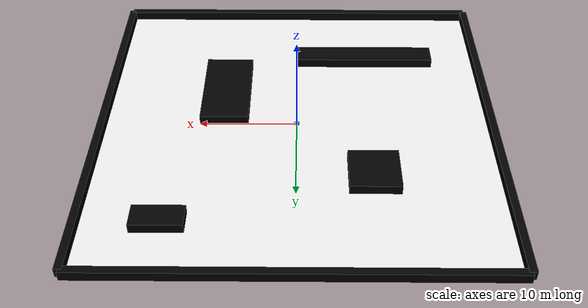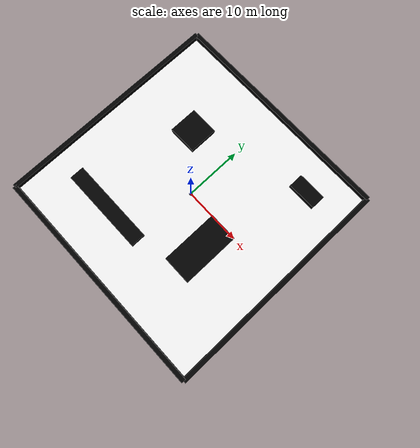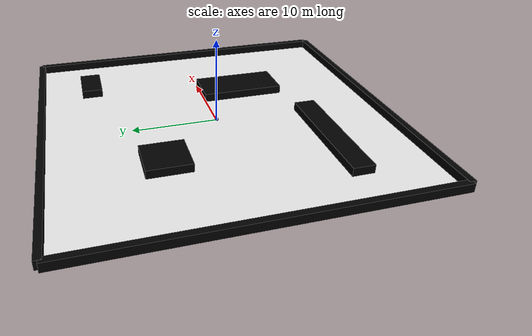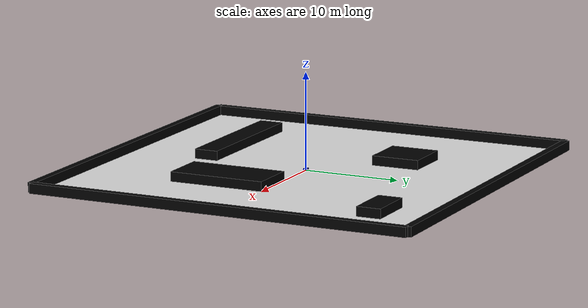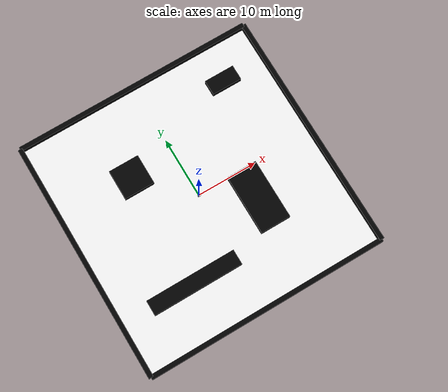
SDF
<?xml version="1.0" ?>
<sdf version="1.9">
  <world name="mcl_world">

    <plugin
      filename="gz-sim-physics-system"
      name="gz::sim::systems::Physics">
    </plugin>

    <plugin
      filename="gz-sim-user-commands-system"
      name="gz::sim::systems::UserCommands">
    </plugin>

    <plugin
      filename="gz-sim-scene-broadcaster-system"
      name="gz::sim::systems::SceneBroadcaster">
    </plugin>

    <plugin
      filename="gz-sim-sensors-system"
      name="gz::sim::systems::Sensors">
      <render_engine>ogre2</render_engine>
</plugin>

    <light type="directional" name="sun">
      <cast_shadows>true</cast_shadows>
      <pose>0 0 20 0 0 0</pose>
      <diffuse>0.8 0.8 0.8 1</diffuse>
      <specular>0.2 0.2 0.2 1</specular>
      <direction>-0.5 0.1 -0.9</direction>
    </light>

    <!-- Piso de 40 x 40 metros -->
    <model name="ground_plane">
      <static>true</static>
      <pose>0 0 0 0 0 0</pose>
      <link name="link">
        <collision name="collision">
          <geometry>
            <box>
              <size>40 40 0.05</size>
            </box>
          </geometry>
        </collision>
        <visual name="visual">
          <geometry>
            <box>
              <size>40 40 0.05</size>
            </box>
          </geometry>
          <material>
            <ambient>0.9 0.9 0.9 1</ambient>
            <diffuse>0.9 0.9 0.9 1</diffuse>
          </material>
        </visual>
      </link>
    </model>

    <!-- Bordes exteriores del mapa -->
    <model name="wall_north">
      <static>true</static>
      <pose>0 20 0.5 0 0 0</pose>
      <link name="link">
        <collision name="collision">
          <geometry><box><size>40 0.75 1</size></box></geometry>
        </collision>
        <visual name="visual">
          <geometry><box><size>40 0.75 1</size></box></geometry>
          <material><ambient>0 0 0 1</ambient><diffuse>0 0 0 1</diffuse></material>
        </visual>
      </link>
    </model>

    <model name="wall_south">
      <static>true</static>
      <pose>0 -20 0.5 0 0 0</pose>
      <link name="link">
        <collision name="collision">
          <geometry><box><size>40 0.75 1</size></box></geometry>
        </collision>
        <visual name="visual">
          <geometry><box><size>40 0.75 1</size></box></geometry>
          <material><ambient>0 0 0 1</ambient><diffuse>0 0 0 1</diffuse></material>
        </visual>
      </link>
    </model>

    <model name="wall_east">
      <static>true</static>
      <pose>20 0 0.5 0 0 0</pose>
      <link name="link">
        <collision name="collision">
          <geometry><box><size>0.75 40 1</size></box></geometry>
        </collision>
        <visual name="visual">
          <geometry><box><size>0.75 40 1</size></box></geometry>
          <material><ambient>0 0 0 1</ambient><diffuse>0 0 0 1</diffuse></material>
        </visual>
      </link>
    </model>

    <model name="wall_west">
      <static>true</static>
      <pose>-20 0 0.5 0 0 0</pose>
      <link name="link">
        <collision name="collision">
          <geometry><box><size>0.75 40 1</size></box></geometry>
        </collision>
        <visual name="visual">
          <geometry><box><size>0.75 40 1</size></box></geometry>
          <material><ambient>0 0 0 1</ambient><diffuse>0 0 0 1</diffuse></material>
        </visual>
      </link>
    </model>

    <!-- Obstáculo 1: rectángulo de pixeles (200,200) a (300,300) -->
    <model name="obstacle_1">
      <static>true</static>
      <pose>-7.5 7.5 0.5 0 0 0</pose>
      <link name="link">
        <collision name="collision">
          <geometry><box><size>5 5 1</size></box></geometry>
        </collision>
        <visual name="visual">
          <geometry><box><size>5 5 1</size></box></geometry>
          <material><ambient>0 0 0 1</ambient><diffuse>0 0 0 1</diffuse></material>
        </visual>
      </link>
    </model>

    <!-- Obstáculo 2: rectángulo de pixeles (500,400) a (600,600) -->
    <model name="obstacle_2">
      <static>true</static>
      <pose>7.5 -5 0.5 0 0 0</pose>
      <link name="link">
        <collision name="collision">
          <geometry><box><size>5 10 1</size></box></geometry>
        </collision>
        <visual name="visual">
          <geometry><box><size>5 10 1</size></box></geometry>
          <material><ambient>0 0 0 1</ambient><diffuse>0 0 0 1</diffuse></material>
        </visual>
      </link>
    </model>

    <!-- Obstáculo 3: rectángulo de pixeles (100,600) a (400,650) -->
    <model name="obstacle_3">
      <static>true</static>
      <pose>-7.5 -11.25 0.5 0 0 0</pose>
      <link name="link">
        <collision name="collision">
          <geometry><box><size>15 2.5 1</size></box></geometry>
        </collision>
        <visual name="visual">
          <geometry><box><size>15 2.5 1</size></box></geometry>
          <material><ambient>0 0 0 1</ambient><diffuse>0 0 0 1</diffuse></material>
        </visual>
      </link>
    </model>

    <!-- Obstáculo 4: rectángulo de pixeles (600,100) a (700,150) -->
    <model name="obstacle_4">
      <static>true</static>
      <pose>12.5 13.75 0.5 0 0 0</pose>
      <link name="link">
        <collision name="collision">
          <geometry><box><size>5 2.5 1</size></box></geometry>
        </collision>
        <visual name="visual">
          <geometry><box><size>5 2.5 1</size></box></geometry>
          <material><ambient>0 0 0 1</ambient><diffuse>0 0 0 1</diffuse></material>
        </visual>
      </link>
    </model>

    <!-- Robot diferencial simple con LiDAR -->
    <model name="mcl_robot">
    <pose>0 0 0.15 0 0 0</pose>

    <link name="base_link">
        <inertial>
        <mass>5.0</mass>
        <inertia>
            <ixx>0.1</ixx>
            <iyy>0.1</iyy>
            <izz>0.1</izz>
        </inertia>
        </inertial>

        <collision name="base_collision">
        <geometry>
            <box>
            <size>0.5 0.35 0.2</size>
            </box>
        </geometry>
        </collision>

        <visual name="base_visual">
        <geometry>
            <box>
            <size>0.5 0.35 0.2</size>
            </box>
        </geometry>
        <material>
            <ambient>0.1 0.1 1.0 1</ambient>
            <diffuse>0.1 0.1 1.0 1</diffuse>
        </material>
        </visual>

        <!-- LiDAR -->
        <sensor name="lidar_sensor" type="gpu_lidar">
        <pose>0 0 0.25 0 0 0</pose>
        <topic>/scan</topic>
        <update_rate>10</update_rate>
        <lidar>
            <scan>
            <horizontal>
                <samples>360</samples>
                <resolution>1</resolution>
                <min_angle>-3.14159</min_angle>
                <max_angle>3.14159</max_angle>
            </horizontal>
            </scan>
            <range>
            <min>0.1</min>
            <max>20.0</max>
            <resolution>0.01</resolution>
            </range>
        </lidar>
        <always_on>true</always_on>
        <visualize>true</visualize>
        </sensor>
    </link>

    <!-- Rueda izquierda -->
    <link name="left_wheel">
        <pose>0 0.225 -0.05 -1.5708 0 0</pose>
        <inertial>
        <mass>0.5</mass>
        <inertia>
            <ixx>0.001</ixx>
            <iyy>0.001</iyy>
            <izz>0.001</izz>
        </inertia>
        </inertial>

        <collision name="collision">
        <geometry>
            <cylinder>
            <radius>0.1</radius>
            <length>0.05</length>
            </cylinder>
        </geometry>
        </collision>

        <visual name="visual">
        <geometry>
            <cylinder>
            <radius>0.1</radius>
            <length>0.05</length>
            </cylinder>
        </geometry>
        <material>
            <ambient>0 0 0 1</ambient>
            <diffuse>0 0 0 1</diffuse>
        </material>
        </visual>
    </link>

    <!-- Rueda derecha -->
    <link name="right_wheel">
        <pose>0 -0.225 -0.05 -1.5708 0 0</pose>
        <inertial>
        <mass>0.5</mass>
        <inertia>
            <ixx>0.001</ixx>
            <iyy>0.001</iyy>
            <izz>0.001</izz>
        </inertia>
        </inertial>

        <collision name="collision">
        <geometry>
            <cylinder>
            <radius>0.1</radius>
            <length>0.05</length>
            </cylinder>
        </geometry>
        </collision>

        <visual name="visual">
        <geometry>
            <cylinder>
            <radius>0.1</radius>
            <length>0.05</length>
            </cylinder>
        </geometry>
        <material>
            <ambient>0 0 0 1</ambient>
            <diffuse>0 0 0 1</diffuse>
        </material>
        </visual>
    </link>

    <!-- Rueda loca / caster -->
    <link name="caster">
        <pose>-0.2 0 -0.1 0 0 0</pose>
        <collision name="collision">
        <geometry>
            <sphere>
            <radius>0.05</radius>
            </sphere>
        </geometry>
        <surface>
            <friction>
            <ode>
                <mu>0.0</mu>
                <mu2>0.0</mu2>
            </ode>
            </friction>
        </surface>
        </collision>
        <visual name="visual">
        <geometry>
            <sphere>
            <radius>0.05</radius>
            </sphere>
        </geometry>
        <material>
            <ambient>0.3 0.3 0.3 1</ambient>
            <diffuse>0.3 0.3 0.3 1</diffuse>
        </material>
        </visual>
    </link>

    <!-- Joints de ruedas -->
    <joint name="left_wheel_joint" type="revolute">
        <parent>base_link</parent>
        <child>left_wheel</child>
        <axis>
        <xyz>0 0 1</xyz>
        <limit>
            <lower>-1e16</lower>
            <upper>1e16</upper>
        </limit>
        </axis>
    </joint>

    <joint name="right_wheel_joint" type="revolute">
        <parent>base_link</parent>
        <child>right_wheel</child>
        <axis>
        <xyz>0 0 1</xyz>
        <limit>
            <lower>-1e16</lower>
            <upper>1e16</upper>
        </limit>
        </axis>
    </joint>

    <!-- Plugin de robot diferencial -->
    <plugin
        filename="gz-sim-diff-drive-system"
        name="gz::sim::systems::DiffDrive">

        <left_joint>left_wheel_joint</left_joint>
        <right_joint>right_wheel_joint</right_joint>

        <wheel_separation>0.45</wheel_separation>
        <wheel_radius>0.1</wheel_radius>

        <odom_publish_frequency>30</odom_publish_frequency>

        <topic>/cmd_vel</topic>
        <odom_topic>/odom</odom_topic>
        <tf_topic>/tf</tf_topic>

        <frame_id>odom</frame_id>
        <child_frame_id>base_link</child_frame_id>
    </plugin>

    </model>

  </world>
</sdf>
